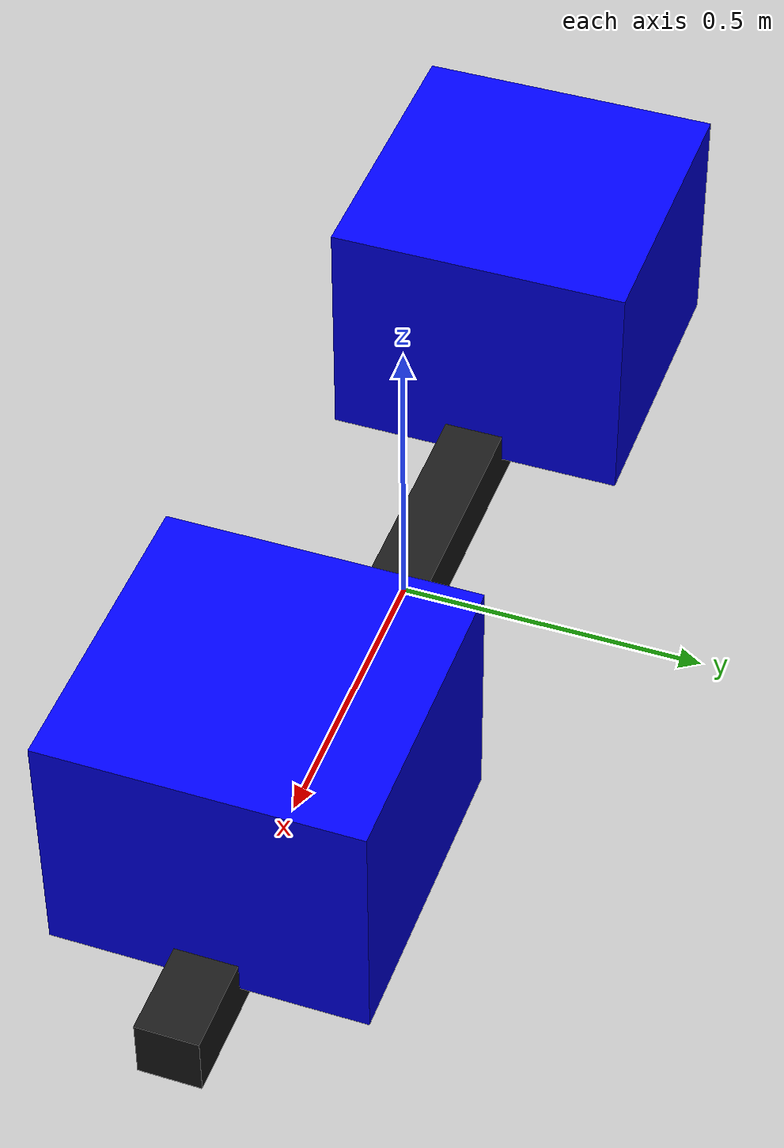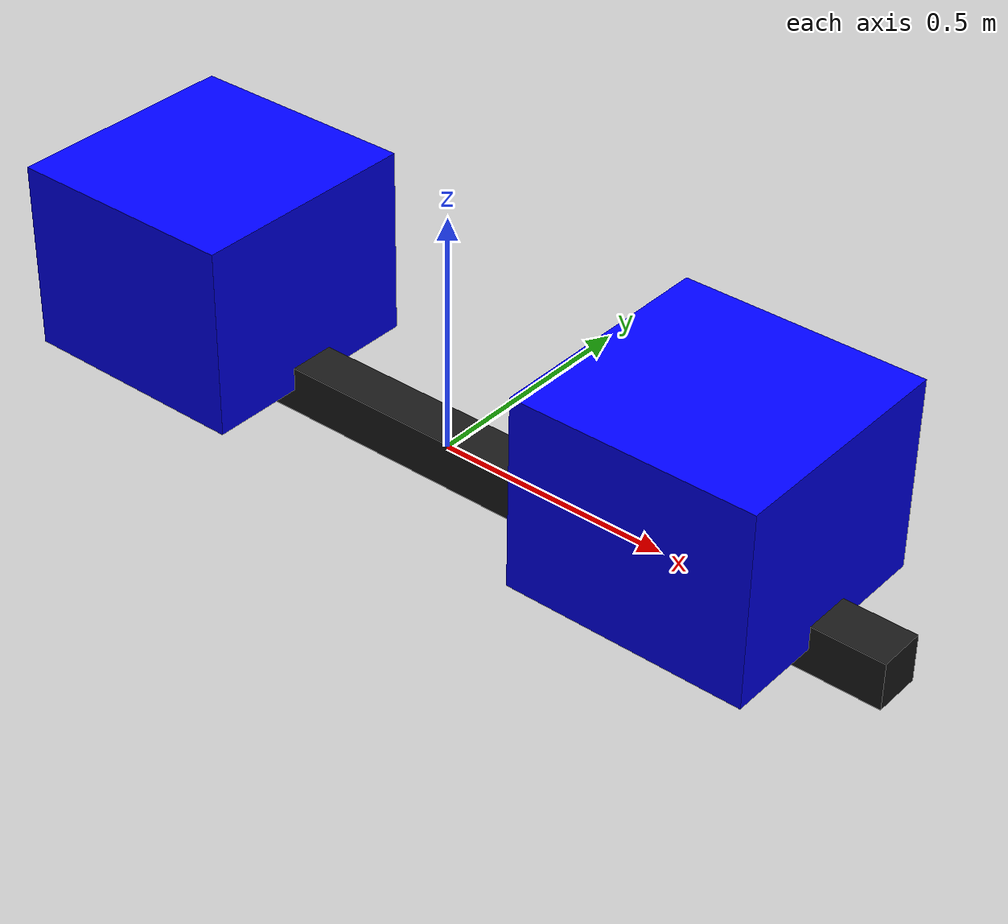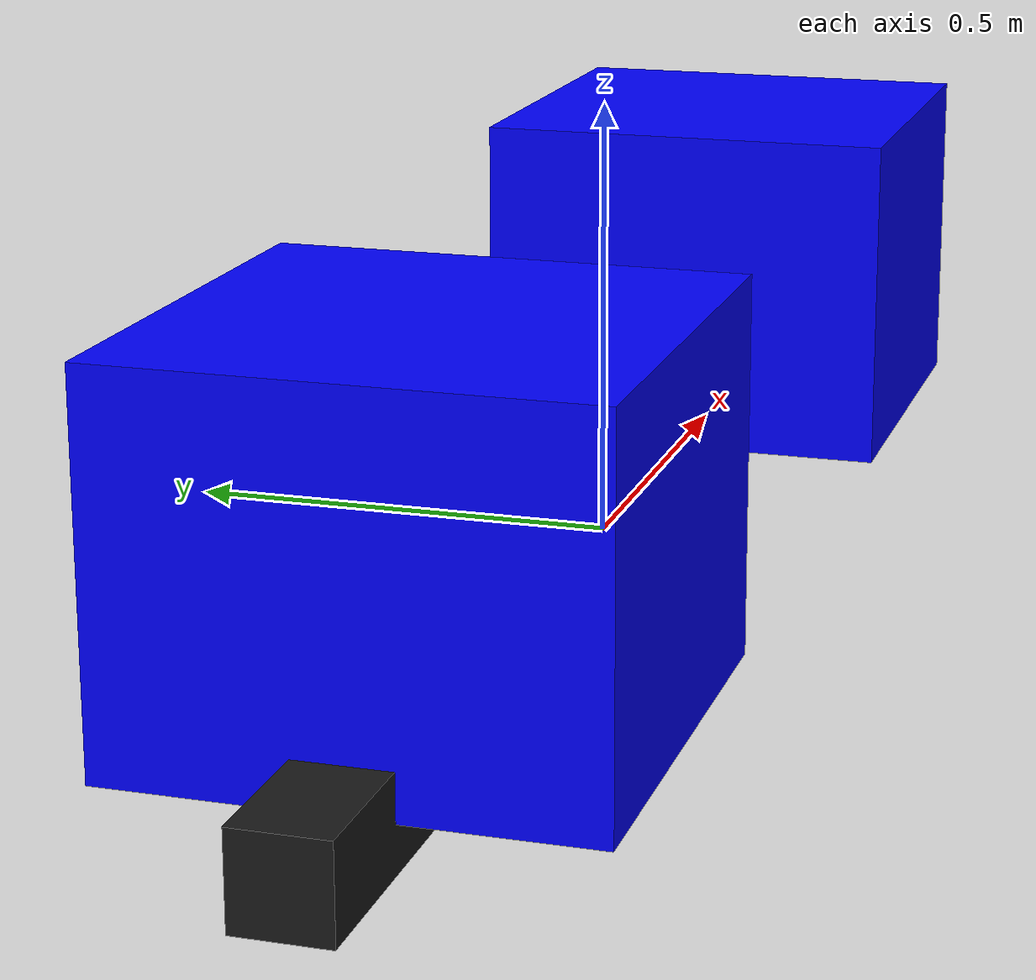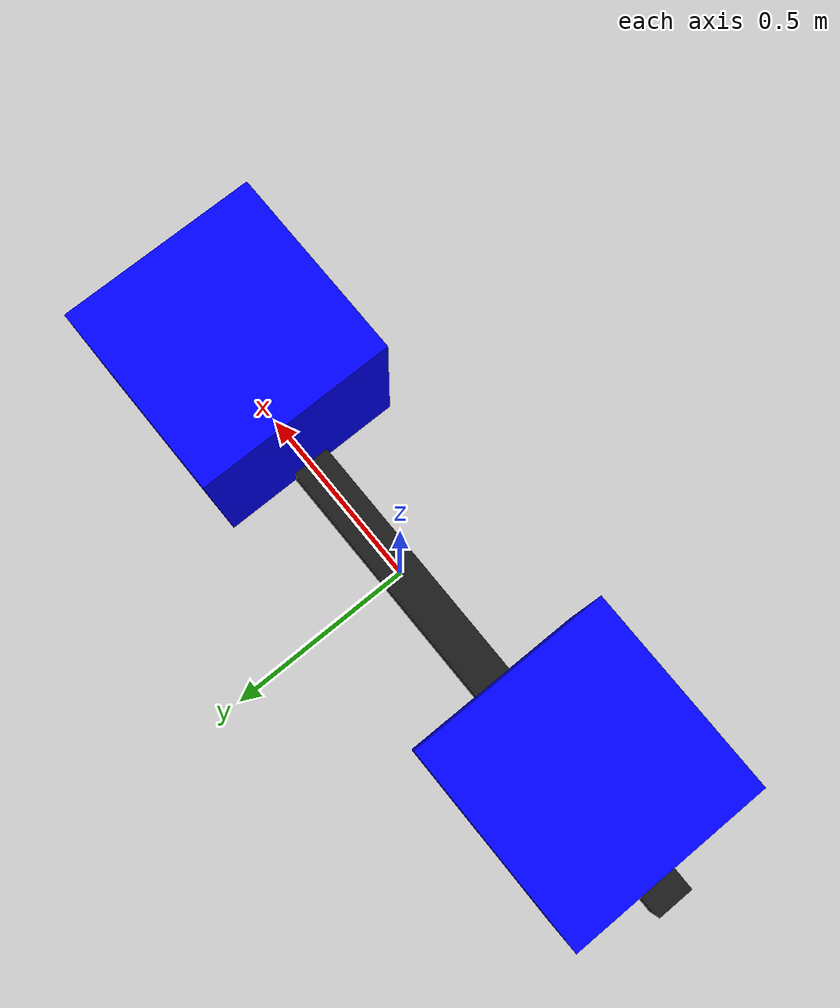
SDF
<?xml version="1.0" ?>
<sdf version="1.8">
  <model name="beam_chair">
    <static>true</static>
    <link name="link">
      <visual name="beam">
        <geometry><box><size>2.0 0.1 0.1</size></box></geometry>
        <material><ambient>0.1 0.1 0.1 1</ambient><diffuse>0.1 0.1 0.1 1</diffuse></material>
      </visual>
      <collision name="beam_col">
        <geometry><box><size>2.0 0.1 0.1</size></box></geometry>
      </collision>
      <visual name="seat1">
        <pose>0.6 0 0.2 0 0 0</pose>
        <geometry><box><size>0.5 0.5 0.4</size></box></geometry>
        <material><ambient>0 0 1 1</ambient><diffuse>0 0 1 1</diffuse></material>
      </visual>
      <collision name="seat1_col">
        <pose>0.6 0 0.2 0 0 0</pose>
        <geometry><box><size>0.5 0.5 0.4</size></box></geometry>
      </collision>
      <visual name="seat2">
        <pose>-0.6 0 0.2 0 0 0</pose>
        <geometry><box><size>0.5 0.5 0.4</size></box></geometry>
        <material><ambient>0 0 1 1</ambient><diffuse>0 0 1 1</diffuse></material>
      </visual>
      <collision name="seat2_col">
        <pose>-0.6 0 0.2 0 0 0</pose>
        <geometry><box><size>0.5 0.5 0.4</size></box></geometry>
      </collision>
    </link>
  </model>
</sdf>
